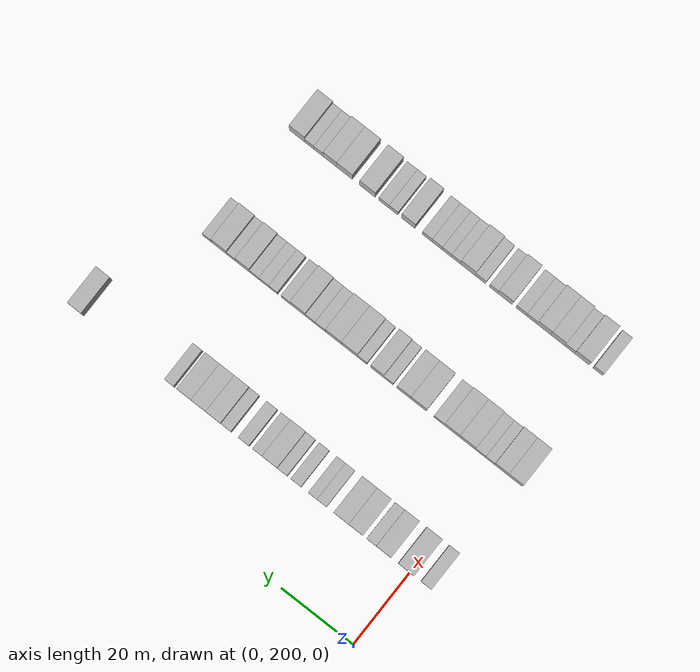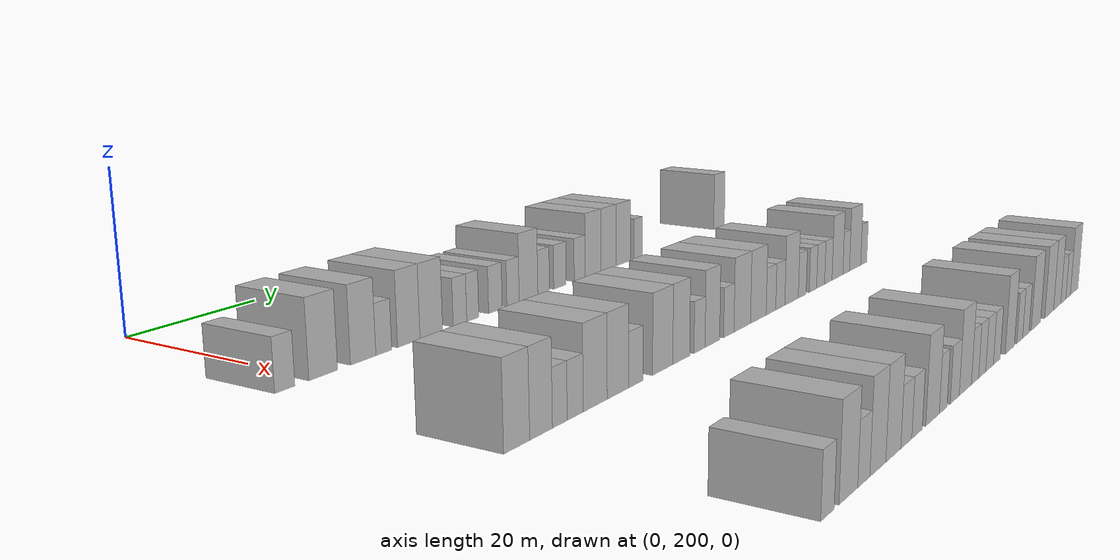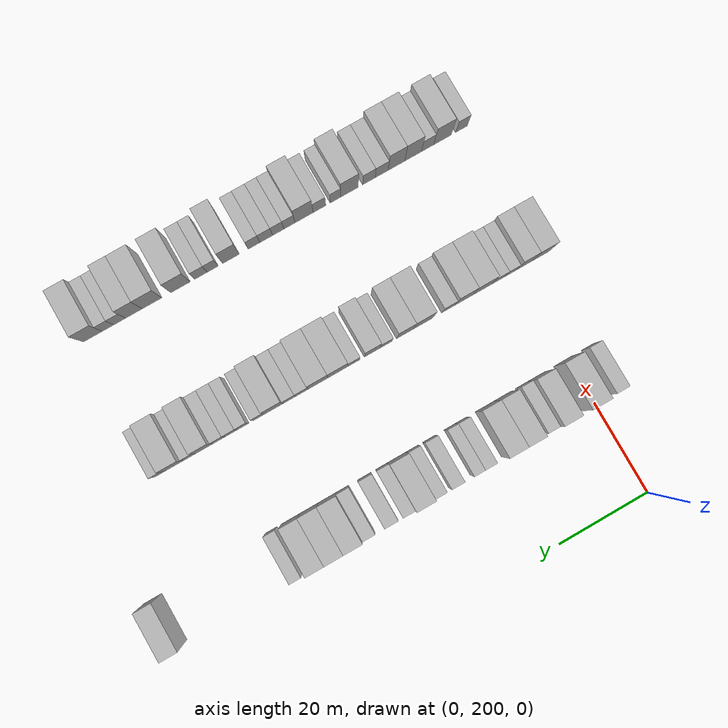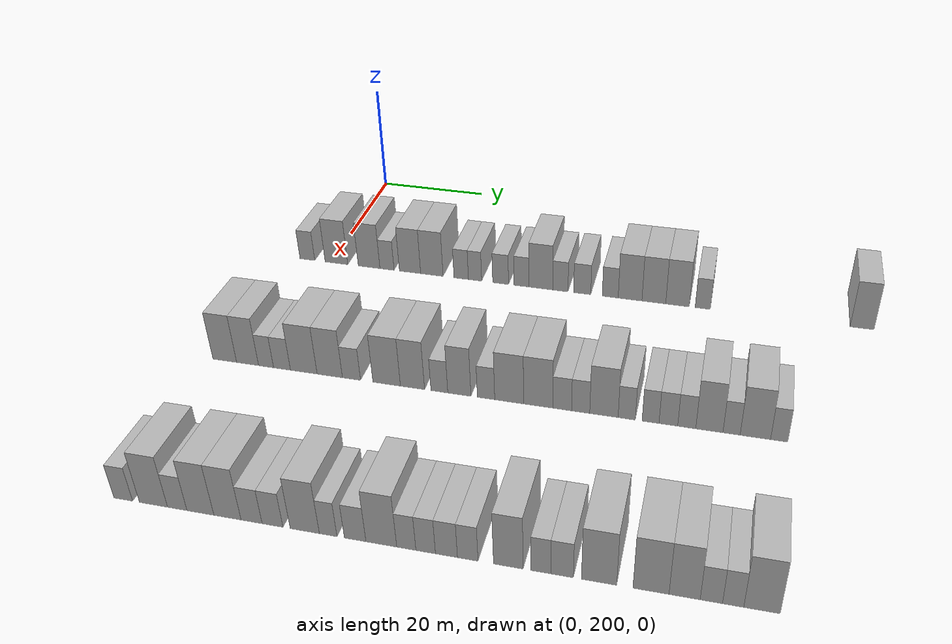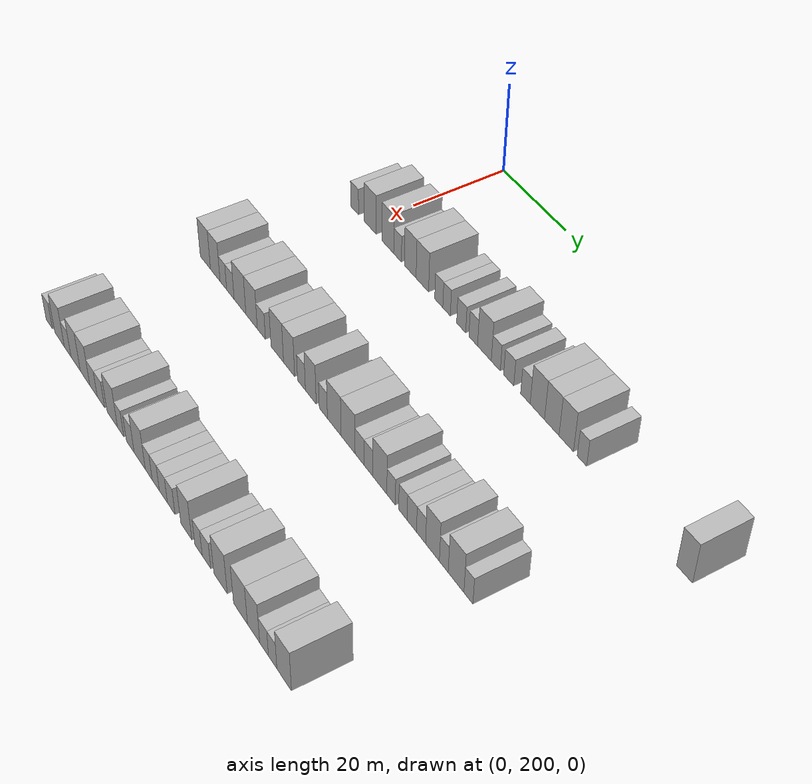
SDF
<sdf version="1.6">
 <world name="default">
  <model name="building_124">
   <static>1</static>
   <pose>25.0000 195.5474 0 0.000000 0.000000 0.000000</pose>
   <link name="link">
    <pose>0 0 3.00 0 0 0</pose>
    <collision name="collision"><geometry><box><size>10.0000 2.8428 6.0000</size></box></geometry></collision>
    <visual name="visual">
     <cast_shadows>0</cast_shadows>
     <geometry><box><size>10.0000 2.8428 6.0000</size></box></geometry>
     <material>
      <script>
       <uri>model://HANNAS_wall/materials/scripts</uri>
       <uri>model://HANNAS_wall/materials/textures</uri>
       <name>vrc/HANNAS_wall</name>
      </script>
     </material>
    </visual>
   </link>
  </model>
  <model name="building_125">
   <static>1</static>
   <pose>25.0000 201.1236 0 0.000000 0.000000 0.000000</pose>
   <link name="link">
    <pose>0 0 4.50 0 0 0</pose>
    <collision name="collision"><geometry><box><size>10.0000 4.3096 9.0000</size></box></geometry></collision>
    <visual name="visual">
     <cast_shadows>0</cast_shadows>
     <geometry><box><size>10.0000 4.3096 9.0000</size></box></geometry>
     <material>
      <script>
       <uri>model://HANNAS_wall/materials/scripts</uri>
       <uri>model://HANNAS_wall/materials/textures</uri>
       <name>vrc/HANNAS_wall</name>
      </script>
     </material>
    </visual>
   </link>
  </model>
  <model name="building_126">
   <static>1</static>
   <pose>25.0000 207.3192 0 0.000000 0.000000 0.000000</pose>
   <link name="link">
    <pose>0 0 4.50 0 0 0</pose>
    <collision name="collision"><geometry><box><size>10.0000 4.0817 9.0000</size></box></geometry></collision>
    <visual name="visual">
     <cast_shadows>0</cast_shadows>
     <geometry><box><size>10.0000 4.0817 9.0000</size></box></geometry>
     <material>
      <script>
       <uri>model://HANNAS_wall/materials/scripts</uri>
       <uri>model://HANNAS_wall/materials/textures</uri>
       <name>vrc/HANNAS_wall</name>
      </script>
     </material>
    </visual>
   </link>
  </model>
  <model name="building_127">
   <static>1</static>
   <pose>25.0000 210.6829 0 0.000000 0.000000 0.000000</pose>
   <link name="link">
    <pose>0 0 3.00 0 0 0</pose>
    <collision name="collision"><geometry><box><size>10.0000 2.6455 6.0000</size></box></geometry></collision>
    <visual name="visual">
     <cast_shadows>0</cast_shadows>
     <geometry><box><size>10.0000 2.6455 6.0000</size></box></geometry>
     <material>
      <script>
       <uri>model://HANNAS_wall/materials/scripts</uri>
       <uri>model://HANNAS_wall/materials/textures</uri>
       <name>vrc/HANNAS_wall</name>
      </script>
     </material>
    </visual>
   </link>
  </model>
  <model name="building_128">
   <static>1</static>
   <pose>25.0000 214.9769 0 0.000000 0.000000 0.000000</pose>
   <link name="link">
    <pose>0 0 4.50 0 0 0</pose>
    <collision name="collision"><geometry><box><size>10.0000 3.9425 9.0000</size></box></geometry></collision>
    <visual name="visual">
     <cast_shadows>0</cast_shadows>
     <geometry><box><size>10.0000 3.9425 9.0000</size></box></geometry>
     <material>
      <script>
       <uri>model://HANNAS_wall/materials/scripts</uri>
       <uri>model://HANNAS_wall/materials/textures</uri>
       <name>vrc/HANNAS_wall</name>
      </script>
     </material>
    </visual>
   </link>
  </model>
  <model name="building_129">
   <static>1</static>
   <pose>25.0000 219.0185 0 0.000000 0.000000 0.000000</pose>
   <link name="link">
    <pose>0 0 4.50 0 0 0</pose>
    <collision name="collision"><geometry><box><size>10.0000 4.1408 9.0000</size></box></geometry></collision>
    <visual name="visual">
     <cast_shadows>0</cast_shadows>
     <geometry><box><size>10.0000 4.1408 9.0000</size></box></geometry>
     <material>
      <script>
       <uri>model://HANNAS_wall/materials/scripts</uri>
       <uri>model://HANNAS_wall/materials/textures</uri>
       <name>vrc/HANNAS_wall</name>
      </script>
     </material>
    </visual>
   </link>
  </model>
  <model name="building_130">
   <static>1</static>
   <pose>25.0000 224.4036 0 0.000000 0.000000 0.000000</pose>
   <link name="link">
    <pose>0 0 3.00 0 0 0</pose>
    <collision name="collision"><geometry><box><size>10.0000 2.6294 6.0000</size></box></geometry></collision>
    <visual name="visual">
     <cast_shadows>0</cast_shadows>
     <geometry><box><size>10.0000 2.6294 6.0000</size></box></geometry>
     <material>
      <script>
       <uri>model://HANNAS_wall/materials/scripts</uri>
       <uri>model://HANNAS_wall/materials/textures</uri>
       <name>vrc/HANNAS_wall</name>
      </script>
     </material>
    </visual>
   </link>
  </model>
  <model name="building_131">
   <static>1</static>
   <pose>25.0000 226.9201 0 0.000000 0.000000 0.000000</pose>
   <link name="link">
    <pose>0 0 3.00 0 0 0</pose>
    <collision name="collision"><geometry><box><size>10.0000 2.4035 6.0000</size></box></geometry></collision>
    <visual name="visual">
     <cast_shadows>0</cast_shadows>
     <geometry><box><size>10.0000 2.4035 6.0000</size></box></geometry>
     <material>
      <script>
       <uri>model://HANNAS_wall/materials/scripts</uri>
       <uri>model://HANNAS_wall/materials/textures</uri>
       <name>vrc/HANNAS_wall</name>
      </script>
     </material>
    </visual>
   </link>
  </model>
  <model name="building_132">
   <static>1</static>
   <pose>25.0000 231.5428 0 0.000000 0.000000 0.000000</pose>
   <link name="link">
    <pose>0 0 3.00 0 0 0</pose>
    <collision name="collision"><geometry><box><size>10.0000 2.8419 6.0000</size></box></geometry></collision>
    <visual name="visual">
     <cast_shadows>0</cast_shadows>
     <geometry><box><size>10.0000 2.8419 6.0000</size></box></geometry>
     <material>
      <script>
       <uri>model://HANNAS_wall/materials/scripts</uri>
       <uri>model://HANNAS_wall/materials/textures</uri>
       <name>vrc/HANNAS_wall</name>
      </script>
     </material>
    </visual>
   </link>
  </model>
  <model name="building_133">
   <static>1</static>
   <pose>25.0000 235.2946 0 0.000000 0.000000 0.000000</pose>
   <link name="link">
    <pose>0 0 3.00 0 0 0</pose>
    <collision name="collision"><geometry><box><size>10.0000 2.6617 6.0000</size></box></geometry></collision>
    <visual name="visual">
     <cast_shadows>0</cast_shadows>
     <geometry><box><size>10.0000 2.6617 6.0000</size></box></geometry>
     <material>
      <script>
       <uri>model://HANNAS_wall/materials/scripts</uri>
       <uri>model://HANNAS_wall/materials/textures</uri>
       <name>vrc/HANNAS_wall</name>
      </script>
     </material>
    </visual>
   </link>
  </model>
  <model name="building_134">
   <static>1</static>
   <pose>25.0000 238.7206 0 0.000000 0.000000 0.000000</pose>
   <link name="link">
    <pose>0 0 4.50 0 0 0</pose>
    <collision name="collision"><geometry><box><size>10.0000 4.1904 9.0000</size></box></geometry></collision>
    <visual name="visual">
     <cast_shadows>0</cast_shadows>
     <geometry><box><size>10.0000 4.1904 9.0000</size></box></geometry>
     <material>
      <script>
       <uri>model://HANNAS_wall/materials/scripts</uri>
       <uri>model://HANNAS_wall/materials/textures</uri>
       <name>vrc/HANNAS_wall</name>
      </script>
     </material>
    </visual>
   </link>
  </model>
  <model name="building_135">
   <static>1</static>
   <pose>25.0000 242.1668 0 0.000000 0.000000 0.000000</pose>
   <link name="link">
    <pose>0 0 3.00 0 0 0</pose>
    <collision name="collision"><geometry><box><size>10.0000 2.7020 6.0000</size></box></geometry></collision>
    <visual name="visual">
     <cast_shadows>0</cast_shadows>
     <geometry><box><size>10.0000 2.7020 6.0000</size></box></geometry>
     <material>
      <script>
       <uri>model://HANNAS_wall/materials/scripts</uri>
       <uri>model://HANNAS_wall/materials/textures</uri>
       <name>vrc/HANNAS_wall</name>
      </script>
     </material>
    </visual>
   </link>
  </model>
  <model name="building_136">
   <static>1</static>
   <pose>25.0000 246.0083 0 0.000000 0.000000 0.000000</pose>
   <link name="link">
    <pose>0 0 3.00 0 0 0</pose>
    <collision name="collision"><geometry><box><size>10.0000 2.9809 6.0000</size></box></geometry></collision>
    <visual name="visual">
     <cast_shadows>0</cast_shadows>
     <geometry><box><size>10.0000 2.9809 6.0000</size></box></geometry>
     <material>
      <script>
       <uri>model://HANNAS_wall/materials/scripts</uri>
       <uri>model://HANNAS_wall/materials/textures</uri>
       <name>vrc/HANNAS_wall</name>
      </script>
     </material>
    </visual>
   </link>
  </model>
  <model name="building_137">
   <static>1</static>
   <pose>25.0000 250.8749 0 0.000000 0.000000 0.000000</pose>
   <link name="link">
    <pose>0 0 3.00 0 0 0</pose>
    <collision name="collision"><geometry><box><size>10.0000 2.7522 6.0000</size></box></geometry></collision>
    <visual name="visual">
     <cast_shadows>0</cast_shadows>
     <geometry><box><size>10.0000 2.7522 6.0000</size></box></geometry>
     <material>
      <script>
       <uri>model://HANNAS_wall/materials/scripts</uri>
       <uri>model://HANNAS_wall/materials/textures</uri>
       <name>vrc/HANNAS_wall</name>
      </script>
     </material>
    </visual>
   </link>
  </model>
  <model name="building_138">
   <static>1</static>
   <pose>25.0000 254.2930 0 0.000000 0.000000 0.000000</pose>
   <link name="link">
    <pose>0 0 4.50 0 0 0</pose>
    <collision name="collision"><geometry><box><size>10.0000 4.0841 9.0000</size></box></geometry></collision>
    <visual name="visual">
     <cast_shadows>0</cast_shadows>
     <geometry><box><size>10.0000 4.0841 9.0000</size></box></geometry>
     <material>
      <script>
       <uri>model://HANNAS_wall/materials/scripts</uri>
       <uri>model://HANNAS_wall/materials/textures</uri>
       <name>vrc/HANNAS_wall</name>
      </script>
     </material>
    </visual>
   </link>
  </model>
  <model name="building_139">
   <static>1</static>
   <pose>25.0000 258.3640 0 0.000000 0.000000 0.000000</pose>
   <link name="link">
    <pose>0 0 4.50 0 0 0</pose>
    <collision name="collision"><geometry><box><size>10.0000 4.0578 9.0000</size></box></geometry></collision>
    <visual name="visual">
     <cast_shadows>0</cast_shadows>
     <geometry><box><size>10.0000 4.0578 9.0000</size></box></geometry>
     <material>
      <script>
       <uri>model://HANNAS_wall/materials/scripts</uri>
       <uri>model://HANNAS_wall/materials/textures</uri>
       <name>vrc/HANNAS_wall</name>
      </script>
     </material>
    </visual>
   </link>
  </model>
  <model name="building_140">
   <static>1</static>
   <pose>25.0000 262.3791 0 0.000000 0.000000 0.000000</pose>
   <link name="link">
    <pose>0 0 4.50 0 0 0</pose>
    <collision name="collision"><geometry><box><size>10.0000 3.9724 9.0000</size></box></geometry></collision>
    <visual name="visual">
     <cast_shadows>0</cast_shadows>
     <geometry><box><size>10.0000 3.9724 9.0000</size></box></geometry>
     <material>
      <script>
       <uri>model://HANNAS_wall/materials/scripts</uri>
       <uri>model://HANNAS_wall/materials/textures</uri>
       <name>vrc/HANNAS_wall</name>
      </script>
     </material>
    </visual>
   </link>
  </model>
  <model name="building_141">
   <static>1</static>
   <pose>25.0000 266.6409 0 0.000000 0.000000 0.000000</pose>
   <link name="link">
    <pose>0 0 3.00 0 0 0</pose>
    <collision name="collision"><geometry><box><size>10.0000 2.5511 6.0000</size></box></geometry></collision>
    <visual name="visual">
     <cast_shadows>0</cast_shadows>
     <geometry><box><size>10.0000 2.5511 6.0000</size></box></geometry>
     <material>
      <script>
       <uri>model://HANNAS_wall/materials/scripts</uri>
       <uri>model://HANNAS_wall/materials/textures</uri>
       <name>vrc/HANNAS_wall</name>
      </script>
     </material>
    </visual>
   </link>
  </model>
  <model name="building_142">
   <static>1</static>
   <pose>25.0000 292.6372 0 0.000000 0.000000 0.000000</pose>
   <link name="link">
    <pose>0 0 4.50 0 0 0</pose>
    <collision name="collision"><geometry><box><size>10.0000 3.8138 9.0000</size></box></geometry></collision>
    <visual name="visual">
     <cast_shadows>0</cast_shadows>
     <geometry><box><size>10.0000 3.8138 9.0000</size></box></geometry>
     <material>
      <script>
       <uri>model://HANNAS_wall/materials/scripts</uri>
       <uri>model://HANNAS_wall/materials/textures</uri>
       <name>vrc/HANNAS_wall</name>
      </script>
     </material>
    </visual>
   </link>
  </model>
  <model name="building_256">
   <static>1</static>
   <pose>55.0000 194.4058 0 0.000000 0.000000 0.000000</pose>
   <link name="link">
    <pose>0 0 4.50 0 0 0</pose>
    <collision name="collision"><geometry><box><size>10.0000 4.0283 9.0000</size></box></geometry></collision>
    <visual name="visual">
     <cast_shadows>0</cast_shadows>
     <geometry><box><size>10.0000 4.0283 9.0000</size></box></geometry>
     <material>
      <script>
       <uri>model://HANNAS_wall/materials/scripts</uri>
       <uri>model://HANNAS_wall/materials/textures</uri>
       <name>vrc/HANNAS_wall</name>
      </script>
     </material>
    </visual>
   </link>
  </model>
  <model name="building_257">
   <static>1</static>
   <pose>55.0000 198.2717 0 0.000000 0.000000 0.000000</pose>
   <link name="link">
    <pose>0 0 4.50 0 0 0</pose>
    <collision name="collision"><geometry><box><size>10.0000 3.7035 9.0000</size></box></geometry></collision>
    <visual name="visual">
     <cast_shadows>0</cast_shadows>
     <geometry><box><size>10.0000 3.7035 9.0000</size></box></geometry>
     <material>
      <script>
       <uri>model://HANNAS_wall/materials/scripts</uri>
       <uri>model://HANNAS_wall/materials/textures</uri>
       <name>vrc/HANNAS_wall</name>
      </script>
     </material>
    </visual>
   </link>
  </model>
  <model name="building_258">
   <static>1</static>
   <pose>55.0000 201.3807 0 0.000000 0.000000 0.000000</pose>
   <link name="link">
    <pose>0 0 3.00 0 0 0</pose>
    <collision name="collision"><geometry><box><size>10.0000 2.5145 6.0000</size></box></geometry></collision>
    <visual name="visual">
     <cast_shadows>0</cast_shadows>
     <geometry><box><size>10.0000 2.5145 6.0000</size></box></geometry>
     <material>
      <script>
       <uri>model://HANNAS_wall/materials/scripts</uri>
       <uri>model://HANNAS_wall/materials/textures</uri>
       <name>vrc/HANNAS_wall</name>
      </script>
     </material>
    </visual>
   </link>
  </model>
  <model name="building_259">
   <static>1</static>
   <pose>55.0000 204.0473 0 0.000000 0.000000 0.000000</pose>
   <link name="link">
    <pose>0 0 3.00 0 0 0</pose>
    <collision name="collision"><geometry><box><size>10.0000 2.8186 6.0000</size></box></geometry></collision>
    <visual name="visual">
     <cast_shadows>0</cast_shadows>
     <geometry><box><size>10.0000 2.8186 6.0000</size></box></geometry>
     <material>
      <script>
       <uri>model://HANNAS_wall/materials/scripts</uri>
       <uri>model://HANNAS_wall/materials/textures</uri>
       <name>vrc/HANNAS_wall</name>
      </script>
     </material>
    </visual>
   </link>
  </model>
  <model name="building_260">
   <static>1</static>
   <pose>55.0000 207.6594 0 0.000000 0.000000 0.000000</pose>
   <link name="link">
    <pose>0 0 4.50 0 0 0</pose>
    <collision name="collision"><geometry><box><size>10.0000 4.4056 9.0000</size></box></geometry></collision>
    <visual name="visual">
     <cast_shadows>0</cast_shadows>
     <geometry><box><size>10.0000 4.4056 9.0000</size></box></geometry>
     <material>
      <script>
       <uri>model://HANNAS_wall/materials/scripts</uri>
       <uri>model://HANNAS_wall/materials/textures</uri>
       <name>vrc/HANNAS_wall</name>
      </script>
     </material>
    </visual>
   </link>
  </model>
  <model name="building_261">
   <static>1</static>
   <pose>55.0000 211.9396 0 0.000000 0.000000 0.000000</pose>
   <link name="link">
    <pose>0 0 4.50 0 0 0</pose>
    <collision name="collision"><geometry><box><size>10.0000 4.1547 9.0000</size></box></geometry></collision>
    <visual name="visual">
     <cast_shadows>0</cast_shadows>
     <geometry><box><size>10.0000 4.1547 9.0000</size></box></geometry>
     <material>
      <script>
       <uri>model://HANNAS_wall/materials/scripts</uri>
       <uri>model://HANNAS_wall/materials/textures</uri>
       <name>vrc/HANNAS_wall</name>
      </script>
     </material>
    </visual>
   </link>
  </model>
  <model name="building_262">
   <static>1</static>
   <pose>55.0000 215.4841 0 0.000000 0.000000 0.000000</pose>
   <link name="link">
    <pose>0 0 3.00 0 0 0</pose>
    <collision name="collision"><geometry><box><size>10.0000 2.9343 6.0000</size></box></geometry></collision>
    <visual name="visual">
     <cast_shadows>0</cast_shadows>
     <geometry><box><size>10.0000 2.9343 6.0000</size></box></geometry>
     <material>
      <script>
       <uri>model://HANNAS_wall/materials/scripts</uri>
       <uri>model://HANNAS_wall/materials/textures</uri>
       <name>vrc/HANNAS_wall</name>
      </script>
     </material>
    </visual>
   </link>
  </model>
  <model name="building_263">
   <static>1</static>
   <pose>55.0000 221.1545 0 0.000000 0.000000 0.000000</pose>
   <link name="link">
    <pose>0 0 4.50 0 0 0</pose>
    <collision name="collision"><geometry><box><size>10.0000 4.4064 9.0000</size></box></geometry></collision>
    <visual name="visual">
     <cast_shadows>0</cast_shadows>
     <geometry><box><size>10.0000 4.4064 9.0000</size></box></geometry>
     <material>
      <script>
       <uri>model://HANNAS_wall/materials/scripts</uri>
       <uri>model://HANNAS_wall/materials/textures</uri>
       <name>vrc/HANNAS_wall</name>
      </script>
     </material>
    </visual>
   </link>
  </model>
  <model name="building_264">
   <static>1</static>
   <pose>55.0000 225.2808 0 0.000000 0.000000 0.000000</pose>
   <link name="link">
    <pose>0 0 4.50 0 0 0</pose>
    <collision name="collision"><geometry><box><size>10.0000 3.8462 9.0000</size></box></geometry></collision>
    <visual name="visual">
     <cast_shadows>0</cast_shadows>
     <geometry><box><size>10.0000 3.8462 9.0000</size></box></geometry>
     <material>
      <script>
       <uri>model://HANNAS_wall/materials/scripts</uri>
       <uri>model://HANNAS_wall/materials/textures</uri>
       <name>vrc/HANNAS_wall</name>
      </script>
     </material>
    </visual>
   </link>
  </model>
  <model name="building_265">
   <static>1</static>
   <pose>55.0000 229.5291 0 0.000000 0.000000 0.000000</pose>
   <link name="link">
    <pose>0 0 3.00 0 0 0</pose>
    <collision name="collision"><geometry><box><size>10.0000 2.6505 6.0000</size></box></geometry></collision>
    <visual name="visual">
     <cast_shadows>0</cast_shadows>
     <geometry><box><size>10.0000 2.6505 6.0000</size></box></geometry>
     <material>
      <script>
       <uri>model://HANNAS_wall/materials/scripts</uri>
       <uri>model://HANNAS_wall/materials/textures</uri>
       <name>vrc/HANNAS_wall</name>
      </script>
     </material>
    </visual>
   </link>
  </model>
  <model name="building_266">
   <static>1</static>
   <pose>55.0000 232.6630 0 0.000000 0.000000 0.000000</pose>
   <link name="link">
    <pose>0 0 4.50 0 0 0</pose>
    <collision name="collision"><geometry><box><size>10.0000 3.6172 9.0000</size></box></geometry></collision>
    <visual name="visual">
     <cast_shadows>0</cast_shadows>
     <geometry><box><size>10.0000 3.6172 9.0000</size></box></geometry>
     <material>
      <script>
       <uri>model://HANNAS_wall/materials/scripts</uri>
       <uri>model://HANNAS_wall/materials/textures</uri>
       <name>vrc/HANNAS_wall</name>
      </script>
     </material>
    </visual>
   </link>
  </model>
  <model name="building_267">
   <static>1</static>
   <pose>55.0000 236.8164 0 0.000000 0.000000 0.000000</pose>
   <link name="link">
    <pose>0 0 3.00 0 0 0</pose>
    <collision name="collision"><geometry><box><size>10.0000 2.6895 6.0000</size></box></geometry></collision>
    <visual name="visual">
     <cast_shadows>0</cast_shadows>
     <geometry><box><size>10.0000 2.6895 6.0000</size></box></geometry>
     <material>
      <script>
       <uri>model://HANNAS_wall/materials/scripts</uri>
       <uri>model://HANNAS_wall/materials/textures</uri>
       <name>vrc/HANNAS_wall</name>
      </script>
     </material>
    </visual>
   </link>
  </model>
  <model name="building_268">
   <static>1</static>
   <pose>55.0000 240.3813 0 0.000000 0.000000 0.000000</pose>
   <link name="link">
    <pose>0 0 4.50 0 0 0</pose>
    <collision name="collision"><geometry><box><size>10.0000 4.4404 9.0000</size></box></geometry></collision>
    <visual name="visual">
     <cast_shadows>0</cast_shadows>
     <geometry><box><size>10.0000 4.4404 9.0000</size></box></geometry>
     <material>
      <script>
       <uri>model://HANNAS_wall/materials/scripts</uri>
       <uri>model://HANNAS_wall/materials/textures</uri>
       <name>vrc/HANNAS_wall</name>
      </script>
     </material>
    </visual>
   </link>
  </model>
  <model name="building_269">
   <static>1</static>
   <pose>55.0000 244.8174 0 0.000000 0.000000 0.000000</pose>
   <link name="link">
    <pose>0 0 4.50 0 0 0</pose>
    <collision name="collision"><geometry><box><size>10.0000 4.4317 9.0000</size></box></geometry></collision>
    <visual name="visual">
     <cast_shadows>0</cast_shadows>
     <geometry><box><size>10.0000 4.4317 9.0000</size></box></geometry>
     <material>
      <script>
       <uri>model://HANNAS_wall/materials/scripts</uri>
       <uri>model://HANNAS_wall/materials/textures</uri>
       <name>vrc/HANNAS_wall</name>
      </script>
     </material>
    </visual>
   </link>
  </model>
  <model name="building_270">
   <static>1</static>
   <pose>55.0000 248.4415 0 0.000000 0.000000 0.000000</pose>
   <link name="link">
    <pose>0 0 3.00 0 0 0</pose>
    <collision name="collision"><geometry><box><size>10.0000 2.8165 6.0000</size></box></geometry></collision>
    <visual name="visual">
     <cast_shadows>0</cast_shadows>
     <geometry><box><size>10.0000 2.8165 6.0000</size></box></geometry>
     <material>
      <script>
       <uri>model://HANNAS_wall/materials/scripts</uri>
       <uri>model://HANNAS_wall/materials/textures</uri>
       <name>vrc/HANNAS_wall</name>
      </script>
     </material>
    </visual>
   </link>
  </model>
  <model name="building_271">
   <static>1</static>
   <pose>55.0000 251.2071 0 0.000000 0.000000 0.000000</pose>
   <link name="link">
    <pose>0 0 3.00 0 0 0</pose>
    <collision name="collision"><geometry><box><size>10.0000 2.7147 6.0000</size></box></geometry></collision>
    <visual name="visual">
     <cast_shadows>0</cast_shadows>
     <geometry><box><size>10.0000 2.7147 6.0000</size></box></geometry>
     <material>
      <script>
       <uri>model://HANNAS_wall/materials/scripts</uri>
       <uri>model://HANNAS_wall/materials/textures</uri>
       <name>vrc/HANNAS_wall</name>
      </script>
     </material>
    </visual>
   </link>
  </model>
  <model name="building_272">
   <static>1</static>
   <pose>55.0000 254.6715 0 0.000000 0.000000 0.000000</pose>
   <link name="link">
    <pose>0 0 4.50 0 0 0</pose>
    <collision name="collision"><geometry><box><size>10.0000 4.2141 9.0000</size></box></geometry></collision>
    <visual name="visual">
     <cast_shadows>0</cast_shadows>
     <geometry><box><size>10.0000 4.2141 9.0000</size></box></geometry>
     <material>
      <script>
       <uri>model://HANNAS_wall/materials/scripts</uri>
       <uri>model://HANNAS_wall/materials/textures</uri>
       <name>vrc/HANNAS_wall</name>
      </script>
     </material>
    </visual>
   </link>
  </model>
  <model name="building_273">
   <static>1</static>
   <pose>55.0000 258.0450 0 0.000000 0.000000 0.000000</pose>
   <link name="link">
    <pose>0 0 3.00 0 0 0</pose>
    <collision name="collision"><geometry><box><size>10.0000 2.5330 6.0000</size></box></geometry></collision>
    <visual name="visual">
     <cast_shadows>0</cast_shadows>
     <geometry><box><size>10.0000 2.5330 6.0000</size></box></geometry>
     <material>
      <script>
       <uri>model://HANNAS_wall/materials/scripts</uri>
       <uri>model://HANNAS_wall/materials/textures</uri>
       <name>vrc/HANNAS_wall</name>
      </script>
     </material>
    </visual>
   </link>
  </model>
  <model name="building_274">
   <static>1</static>
   <pose>55.0000 261.5456 0 0.000000 0.000000 0.000000</pose>
   <link name="link">
    <pose>0 0 3.00 0 0 0</pose>
    <collision name="collision"><geometry><box><size>10.0000 2.4681 6.0000</size></box></geometry></collision>
    <visual name="visual">
     <cast_shadows>0</cast_shadows>
     <geometry><box><size>10.0000 2.4681 6.0000</size></box></geometry>
     <material>
      <script>
       <uri>model://HANNAS_wall/materials/scripts</uri>
       <uri>model://HANNAS_wall/materials/textures</uri>
       <name>vrc/HANNAS_wall</name>
      </script>
     </material>
    </visual>
   </link>
  </model>
  <model name="building_275">
   <static>1</static>
   <pose>55.0000 264.1359 0 0.000000 0.000000 0.000000</pose>
   <link name="link">
    <pose>0 0 3.00 0 0 0</pose>
    <collision name="collision"><geometry><box><size>10.0000 2.7126 6.0000</size></box></geometry></collision>
    <visual name="visual">
     <cast_shadows>0</cast_shadows>
     <geometry><box><size>10.0000 2.7126 6.0000</size></box></geometry>
     <material>
      <script>
       <uri>model://HANNAS_wall/materials/scripts</uri>
       <uri>model://HANNAS_wall/materials/textures</uri>
       <name>vrc/HANNAS_wall</name>
      </script>
     </material>
    </visual>
   </link>
  </model>
  <model name="building_276">
   <static>1</static>
   <pose>55.0000 266.7942 0 0.000000 0.000000 0.000000</pose>
   <link name="link">
    <pose>0 0 3.00 0 0 0</pose>
    <collision name="collision"><geometry><box><size>10.0000 2.6038 6.0000</size></box></geometry></collision>
    <visual name="visual">
     <cast_shadows>0</cast_shadows>
     <geometry><box><size>10.0000 2.6038 6.0000</size></box></geometry>
     <material>
      <script>
       <uri>model://HANNAS_wall/materials/scripts</uri>
       <uri>model://HANNAS_wall/materials/textures</uri>
       <name>vrc/HANNAS_wall</name>
      </script>
     </material>
    </visual>
   </link>
  </model>
  <model name="building_277">
   <static>1</static>
   <pose>55.0000 270.0399 0 0.000000 0.000000 0.000000</pose>
   <link name="link">
    <pose>0 0 4.50 0 0 0</pose>
    <collision name="collision"><geometry><box><size>10.0000 3.8878 9.0000</size></box></geometry></collision>
    <visual name="visual">
     <cast_shadows>0</cast_shadows>
     <geometry><box><size>10.0000 3.8878 9.0000</size></box></geometry>
     <material>
      <script>
       <uri>model://HANNAS_wall/materials/scripts</uri>
       <uri>model://HANNAS_wall/materials/textures</uri>
       <name>vrc/HANNAS_wall</name>
      </script>
     </material>
    </visual>
   </link>
  </model>
  <model name="building_278">
   <static>1</static>
   <pose>55.0000 273.2037 0 0.000000 0.000000 0.000000</pose>
   <link name="link">
    <pose>0 0 3.00 0 0 0</pose>
    <collision name="collision"><geometry><box><size>10.0000 2.4397 6.0000</size></box></geometry></collision>
    <visual name="visual">
     <cast_shadows>0</cast_shadows>
     <geometry><box><size>10.0000 2.4397 6.0000</size></box></geometry>
     <material>
      <script>
       <uri>model://HANNAS_wall/materials/scripts</uri>
       <uri>model://HANNAS_wall/materials/textures</uri>
       <name>vrc/HANNAS_wall</name>
      </script>
     </material>
    </visual>
   </link>
  </model>
  <model name="building_279">
   <static>1</static>
   <pose>55.0000 276.5707 0 0.000000 0.000000 0.000000</pose>
   <link name="link">
    <pose>0 0 4.50 0 0 0</pose>
    <collision name="collision"><geometry><box><size>10.0000 4.2944 9.0000</size></box></geometry></collision>
    <visual name="visual">
     <cast_shadows>0</cast_shadows>
     <geometry><box><size>10.0000 4.2944 9.0000</size></box></geometry>
     <material>
      <script>
       <uri>model://HANNAS_wall/materials/scripts</uri>
       <uri>model://HANNAS_wall/materials/textures</uri>
       <name>vrc/HANNAS_wall</name>
      </script>
     </material>
    </visual>
   </link>
  </model>
  <model name="building_280">
   <static>1</static>
   <pose>55.0000 279.9269 0 0.000000 0.000000 0.000000</pose>
   <link name="link">
    <pose>0 0 3.00 0 0 0</pose>
    <collision name="collision"><geometry><box><size>10.0000 2.4181 6.0000</size></box></geometry></collision>
    <visual name="visual">
     <cast_shadows>0</cast_shadows>
     <geometry><box><size>10.0000 2.4181 6.0000</size></box></geometry>
     <material>
      <script>
       <uri>model://HANNAS_wall/materials/scripts</uri>
       <uri>model://HANNAS_wall/materials/textures</uri>
       <name>vrc/HANNAS_wall</name>
      </script>
     </material>
    </visual>
   </link>
  </model>
  <model name="building_387">
   <static>1</static>
   <pose>85.0000 194.8221 0 0.000000 0.000000 0.000000</pose>
   <link name="link">
    <pose>0 0 3.00 0 0 0</pose>
    <collision name="collision"><geometry><box><size>10.0000 2.7345 6.0000</size></box></geometry></collision>
    <visual name="visual">
     <cast_shadows>0</cast_shadows>
     <geometry><box><size>10.0000 2.7345 6.0000</size></box></geometry>
     <material>
      <script>
       <uri>model://HANNAS_wall/materials/scripts</uri>
       <uri>model://HANNAS_wall/materials/textures</uri>
       <name>vrc/HANNAS_wall</name>
      </script>
     </material>
    </visual>
   </link>
  </model>
  <model name="building_388">
   <static>1</static>
   <pose>85.0000 199.2340 0 0.000000 0.000000 0.000000</pose>
   <link name="link">
    <pose>0 0 4.50 0 0 0</pose>
    <collision name="collision"><geometry><box><size>10.0000 4.0892 9.0000</size></box></geometry></collision>
    <visual name="visual">
     <cast_shadows>0</cast_shadows>
     <geometry><box><size>10.0000 4.0892 9.0000</size></box></geometry>
     <material>
      <script>
       <uri>model://HANNAS_wall/materials/scripts</uri>
       <uri>model://HANNAS_wall/materials/textures</uri>
       <name>vrc/HANNAS_wall</name>
      </script>
     </material>
    </visual>
   </link>
  </model>
  <model name="building_389">
   <static>1</static>
   <pose>85.0000 202.6738 0 0.000000 0.000000 0.000000</pose>
   <link name="link">
    <pose>0 0 3.00 0 0 0</pose>
    <collision name="collision"><geometry><box><size>10.0000 2.7903 6.0000</size></box></geometry></collision>
    <visual name="visual">
     <cast_shadows>0</cast_shadows>
     <geometry><box><size>10.0000 2.7903 6.0000</size></box></geometry>
     <material>
      <script>
       <uri>model://HANNAS_wall/materials/scripts</uri>
       <uri>model://HANNAS_wall/materials/textures</uri>
       <name>vrc/HANNAS_wall</name>
      </script>
     </material>
    </visual>
   </link>
  </model>
  <model name="building_390">
   <static>1</static>
   <pose>85.0000 205.9954 0 0.000000 0.000000 0.000000</pose>
   <link name="link">
    <pose>0 0 4.50 0 0 0</pose>
    <collision name="collision"><geometry><box><size>10.0000 3.8530 9.0000</size></box></geometry></collision>
    <visual name="visual">
     <cast_shadows>0</cast_shadows>
     <geometry><box><size>10.0000 3.8530 9.0000</size></box></geometry>
     <material>
      <script>
       <uri>model://HANNAS_wall/materials/scripts</uri>
       <uri>model://HANNAS_wall/materials/textures</uri>
       <name>vrc/HANNAS_wall</name>
      </script>
     </material>
    </visual>
   </link>
  </model>
  <model name="building_391">
   <static>1</static>
   <pose>85.0000 209.8404 0 0.000000 0.000000 0.000000</pose>
   <link name="link">
    <pose>0 0 4.50 0 0 0</pose>
    <collision name="collision"><geometry><box><size>10.0000 3.8369 9.0000</size></box></geometry></collision>
    <visual name="visual">
     <cast_shadows>0</cast_shadows>
     <geometry><box><size>10.0000 3.8369 9.0000</size></box></geometry>
     <material>
      <script>
       <uri>model://HANNAS_wall/materials/scripts</uri>
       <uri>model://HANNAS_wall/materials/textures</uri>
       <name>vrc/HANNAS_wall</name>
      </script>
     </material>
    </visual>
   </link>
  </model>
  <model name="building_392">
   <static>1</static>
   <pose>85.0000 213.2363 0 0.000000 0.000000 0.000000</pose>
   <link name="link">
    <pose>0 0 3.00 0 0 0</pose>
    <collision name="collision"><geometry><box><size>10.0000 2.9548 6.0000</size></box></geometry></collision>
    <visual name="visual">
     <cast_shadows>0</cast_shadows>
     <geometry><box><size>10.0000 2.9548 6.0000</size></box></geometry>
     <material>
      <script>
       <uri>model://HANNAS_wall/materials/scripts</uri>
       <uri>model://HANNAS_wall/materials/textures</uri>
       <name>vrc/HANNAS_wall</name>
      </script>
     </material>
    </visual>
   </link>
  </model>
  <model name="building_393">
   <static>1</static>
   <pose>85.0000 216.1617 0 0.000000 0.000000 0.000000</pose>
   <link name="link">
    <pose>0 0 3.00 0 0 0</pose>
    <collision name="collision"><geometry><box><size>10.0000 2.8960 6.0000</size></box></geometry></collision>
    <visual name="visual">
     <cast_shadows>0</cast_shadows>
     <geometry><box><size>10.0000 2.8960 6.0000</size></box></geometry>
     <material>
      <script>
       <uri>model://HANNAS_wall/materials/scripts</uri>
       <uri>model://HANNAS_wall/materials/textures</uri>
       <name>vrc/HANNAS_wall</name>
      </script>
     </material>
    </visual>
   </link>
  </model>
  <model name="building_394">
   <static>1</static>
   <pose>85.0000 220.6159 0 0.000000 0.000000 0.000000</pose>
   <link name="link">
    <pose>0 0 4.50 0 0 0</pose>
    <collision name="collision"><geometry><box><size>10.0000 4.0124 9.0000</size></box></geometry></collision>
    <visual name="visual">
     <cast_shadows>0</cast_shadows>
     <geometry><box><size>10.0000 4.0124 9.0000</size></box></geometry>
     <material>
      <script>
       <uri>model://HANNAS_wall/materials/scripts</uri>
       <uri>model://HANNAS_wall/materials/textures</uri>
       <name>vrc/HANNAS_wall</name>
      </script>
     </material>
    </visual>
   </link>
  </model>
  <model name="building_395">
   <static>1</static>
   <pose>85.0000 223.8256 0 0.000000 0.000000 0.000000</pose>
   <link name="link">
    <pose>0 0 3.00 0 0 0</pose>
    <collision name="collision"><geometry><box><size>10.0000 2.4070 6.0000</size></box></geometry></collision>
    <visual name="visual">
     <cast_shadows>0</cast_shadows>
     <geometry><box><size>10.0000 2.4070 6.0000</size></box></geometry>
     <material>
      <script>
       <uri>model://HANNAS_wall/materials/scripts</uri>
       <uri>model://HANNAS_wall/materials/textures</uri>
       <name>vrc/HANNAS_wall</name>
      </script>
     </material>
    </visual>
   </link>
  </model>
  <model name="building_396">
   <static>1</static>
   <pose>85.0000 227.4790 0 0.000000 0.000000 0.000000</pose>
   <link name="link">
    <pose>0 0 3.00 0 0 0</pose>
    <collision name="collision"><geometry><box><size>10.0000 2.8998 6.0000</size></box></geometry></collision>
    <visual name="visual">
     <cast_shadows>0</cast_shadows>
     <geometry><box><size>10.0000 2.8998 6.0000</size></box></geometry>
     <material>
      <script>
       <uri>model://HANNAS_wall/materials/scripts</uri>
       <uri>model://HANNAS_wall/materials/textures</uri>
       <name>vrc/HANNAS_wall</name>
      </script>
     </material>
    </visual>
   </link>
  </model>
  <model name="building_397">
   <static>1</static>
   <pose>85.0000 230.9879 0 0.000000 0.000000 0.000000</pose>
   <link name="link">
    <pose>0 0 4.50 0 0 0</pose>
    <collision name="collision"><geometry><box><size>10.0000 4.1181 9.0000</size></box></geometry></collision>
    <visual name="visual">
     <cast_shadows>0</cast_shadows>
     <geometry><box><size>10.0000 4.1181 9.0000</size></box></geometry>
     <material>
      <script>
       <uri>model://HANNAS_wall/materials/scripts</uri>
       <uri>model://HANNAS_wall/materials/textures</uri>
       <name>vrc/HANNAS_wall</name>
      </script>
     </material>
    </visual>
   </link>
  </model>
  <model name="building_398">
   <static>1</static>
   <pose>85.0000 234.3139 0 0.000000 0.000000 0.000000</pose>
   <link name="link">
    <pose>0 0 3.00 0 0 0</pose>
    <collision name="collision"><geometry><box><size>10.0000 2.5339 6.0000</size></box></geometry></collision>
    <visual name="visual">
     <cast_shadows>0</cast_shadows>
     <geometry><box><size>10.0000 2.5339 6.0000</size></box></geometry>
     <material>
      <script>
       <uri>model://HANNAS_wall/materials/scripts</uri>
       <uri>model://HANNAS_wall/materials/textures</uri>
       <name>vrc/HANNAS_wall</name>
      </script>
     </material>
    </visual>
   </link>
  </model>
  <model name="building_399">
   <static>1</static>
   <pose>85.0000 236.8673 0 0.000000 0.000000 0.000000</pose>
   <link name="link">
    <pose>0 0 3.00 0 0 0</pose>
    <collision name="collision"><geometry><box><size>10.0000 2.5727 6.0000</size></box></geometry></collision>
    <visual name="visual">
     <cast_shadows>0</cast_shadows>
     <geometry><box><size>10.0000 2.5727 6.0000</size></box></geometry>
     <material>
      <script>
       <uri>model://HANNAS_wall/materials/scripts</uri>
       <uri>model://HANNAS_wall/materials/textures</uri>
       <name>vrc/HANNAS_wall</name>
      </script>
     </material>
    </visual>
   </link>
  </model>
  <model name="building_400">
   <static>1</static>
   <pose>85.0000 239.5886 0 0.000000 0.000000 0.000000</pose>
   <link name="link">
    <pose>0 0 3.00 0 0 0</pose>
    <collision name="collision"><geometry><box><size>10.0000 2.8701 6.0000</size></box></geometry></collision>
    <visual name="visual">
     <cast_shadows>0</cast_shadows>
     <geometry><box><size>10.0000 2.8701 6.0000</size></box></geometry>
     <material>
      <script>
       <uri>model://HANNAS_wall/materials/scripts</uri>
       <uri>model://HANNAS_wall/materials/textures</uri>
       <name>vrc/HANNAS_wall</name>
      </script>
     </material>
    </visual>
   </link>
  </model>
  <model name="building_401">
   <static>1</static>
   <pose>85.0000 242.3549 0 0.000000 0.000000 0.000000</pose>
   <link name="link">
    <pose>0 0 3.00 0 0 0</pose>
    <collision name="collision"><geometry><box><size>10.0000 2.6625 6.0000</size></box></geometry></collision>
    <visual name="visual">
     <cast_shadows>0</cast_shadows>
     <geometry><box><size>10.0000 2.6625 6.0000</size></box></geometry>
     <material>
      <script>
       <uri>model://HANNAS_wall/materials/scripts</uri>
       <uri>model://HANNAS_wall/materials/textures</uri>
       <name>vrc/HANNAS_wall</name>
      </script>
     </material>
    </visual>
   </link>
  </model>
  <model name="building_402">
   <static>1</static>
   <pose>85.0000 247.5731 0 0.000000 0.000000 0.000000</pose>
   <link name="link">
    <pose>0 0 4.50 0 0 0</pose>
    <collision name="collision"><geometry><box><size>10.0000 3.7740 9.0000</size></box></geometry></collision>
    <visual name="visual">
     <cast_shadows>0</cast_shadows>
     <geometry><box><size>10.0000 3.7740 9.0000</size></box></geometry>
     <material>
      <script>
       <uri>model://HANNAS_wall/materials/scripts</uri>
       <uri>model://HANNAS_wall/materials/textures</uri>
       <name>vrc/HANNAS_wall</name>
      </script>
     </material>
    </visual>
   </link>
  </model>
  <model name="building_403">
   <static>1</static>
   <pose>85.0000 251.7022 0 0.000000 0.000000 0.000000</pose>
   <link name="link">
    <pose>0 0 3.00 0 0 0</pose>
    <collision name="collision"><geometry><box><size>10.0000 2.4841 6.0000</size></box></geometry></collision>
    <visual name="visual">
     <cast_shadows>0</cast_shadows>
     <geometry><box><size>10.0000 2.4841 6.0000</size></box></geometry>
     <material>
      <script>
       <uri>model://HANNAS_wall/materials/scripts</uri>
       <uri>model://HANNAS_wall/materials/textures</uri>
       <name>vrc/HANNAS_wall</name>
      </script>
     </material>
    </visual>
   </link>
  </model>
  <model name="building_404">
   <static>1</static>
   <pose>85.0000 254.3660 0 0.000000 0.000000 0.000000</pose>
   <link name="link">
    <pose>0 0 3.00 0 0 0</pose>
    <collision name="collision"><geometry><box><size>10.0000 2.8435 6.0000</size></box></geometry></collision>
    <visual name="visual">
     <cast_shadows>0</cast_shadows>
     <geometry><box><size>10.0000 2.8435 6.0000</size></box></geometry>
     <material>
      <script>
       <uri>model://HANNAS_wall/materials/scripts</uri>
       <uri>model://HANNAS_wall/materials/textures</uri>
       <name>vrc/HANNAS_wall</name>
      </script>
     </material>
    </visual>
   </link>
  </model>
  <model name="building_405">
   <static>1</static>
   <pose>85.0000 258.9649 0 0.000000 0.000000 0.000000</pose>
   <link name="link">
    <pose>0 0 4.50 0 0 0</pose>
    <collision name="collision"><geometry><box><size>10.0000 4.3542 9.0000</size></box></geometry></collision>
    <visual name="visual">
     <cast_shadows>0</cast_shadows>
     <geometry><box><size>10.0000 4.3542 9.0000</size></box></geometry>
     <material>
      <script>
       <uri>model://HANNAS_wall/materials/scripts</uri>
       <uri>model://HANNAS_wall/materials/textures</uri>
       <name>vrc/HANNAS_wall</name>
      </script>
     </material>
    </visual>
   </link>
  </model>
  <model name="building_406">
   <static>1</static>
   <pose>85.0000 265.3270 0 0.000000 0.000000 0.000000</pose>
   <link name="link">
    <pose>0 0 4.50 0 0 0</pose>
    <collision name="collision"><geometry><box><size>10.0000 4.3700 9.0000</size></box></geometry></collision>
    <visual name="visual">
     <cast_shadows>0</cast_shadows>
     <geometry><box><size>10.0000 4.3700 9.0000</size></box></geometry>
     <material>
      <script>
       <uri>model://HANNAS_wall/materials/scripts</uri>
       <uri>model://HANNAS_wall/materials/textures</uri>
       <name>vrc/HANNAS_wall</name>
      </script>
     </material>
    </visual>
   </link>
  </model>
  <model name="building_407">
   <static>1</static>
   <pose>85.0000 269.3835 0 0.000000 0.000000 0.000000</pose>
   <link name="link">
    <pose>0 0 4.50 0 0 0</pose>
    <collision name="collision"><geometry><box><size>10.0000 3.7431 9.0000</size></box></geometry></collision>
    <visual name="visual">
     <cast_shadows>0</cast_shadows>
     <geometry><box><size>10.0000 3.7431 9.0000</size></box></geometry>
     <material>
      <script>
       <uri>model://HANNAS_wall/materials/scripts</uri>
       <uri>model://HANNAS_wall/materials/textures</uri>
       <name>vrc/HANNAS_wall</name>
      </script>
     </material>
    </visual>
   </link>
  </model>
  <model name="building_408">
   <static>1</static>
   <pose>85.0000 272.5846 0 0.000000 0.000000 0.000000</pose>
   <link name="link">
    <pose>0 0 3.00 0 0 0</pose>
    <collision name="collision"><geometry><box><size>10.0000 2.6591 6.0000</size></box></geometry></collision>
    <visual name="visual">
     <cast_shadows>0</cast_shadows>
     <geometry><box><size>10.0000 2.6591 6.0000</size></box></geometry>
     <material>
      <script>
       <uri>model://HANNAS_wall/materials/scripts</uri>
       <uri>model://HANNAS_wall/materials/textures</uri>
       <name>vrc/HANNAS_wall</name>
      </script>
     </material>
    </visual>
   </link>
  </model>
  <model name="building_409">
   <static>1</static>
   <pose>85.0000 275.1683 0 0.000000 0.000000 0.000000</pose>
   <link name="link">
    <pose>0 0 3.00 0 0 0</pose>
    <collision name="collision"><geometry><box><size>10.0000 2.5083 6.0000</size></box></geometry></collision>
    <visual name="visual">
     <cast_shadows>0</cast_shadows>
     <geometry><box><size>10.0000 2.5083 6.0000</size></box></geometry>
     <material>
      <script>
       <uri>model://HANNAS_wall/materials/scripts</uri>
       <uri>model://HANNAS_wall/materials/textures</uri>
       <name>vrc/HANNAS_wall</name>
      </script>
     </material>
    </visual>
   </link>
  </model>
  <model name="building_410">
   <static>1</static>
   <pose>85.0000 278.5580 0 0.000000 0.000000 0.000000</pose>
   <link name="link">
    <pose>0 0 4.50 0 0 0</pose>
    <collision name="collision"><geometry><box><size>10.0000 4.2711 9.0000</size></box></geometry></collision>
    <visual name="visual">
     <cast_shadows>0</cast_shadows>
     <geometry><box><size>10.0000 4.2711 9.0000</size></box></geometry>
     <material>
      <script>
       <uri>model://HANNAS_wall/materials/scripts</uri>
       <uri>model://HANNAS_wall/materials/textures</uri>
       <name>vrc/HANNAS_wall</name>
      </script>
     </material>
    </visual>
   </link>
  </model>
 </world>
</sdf>
